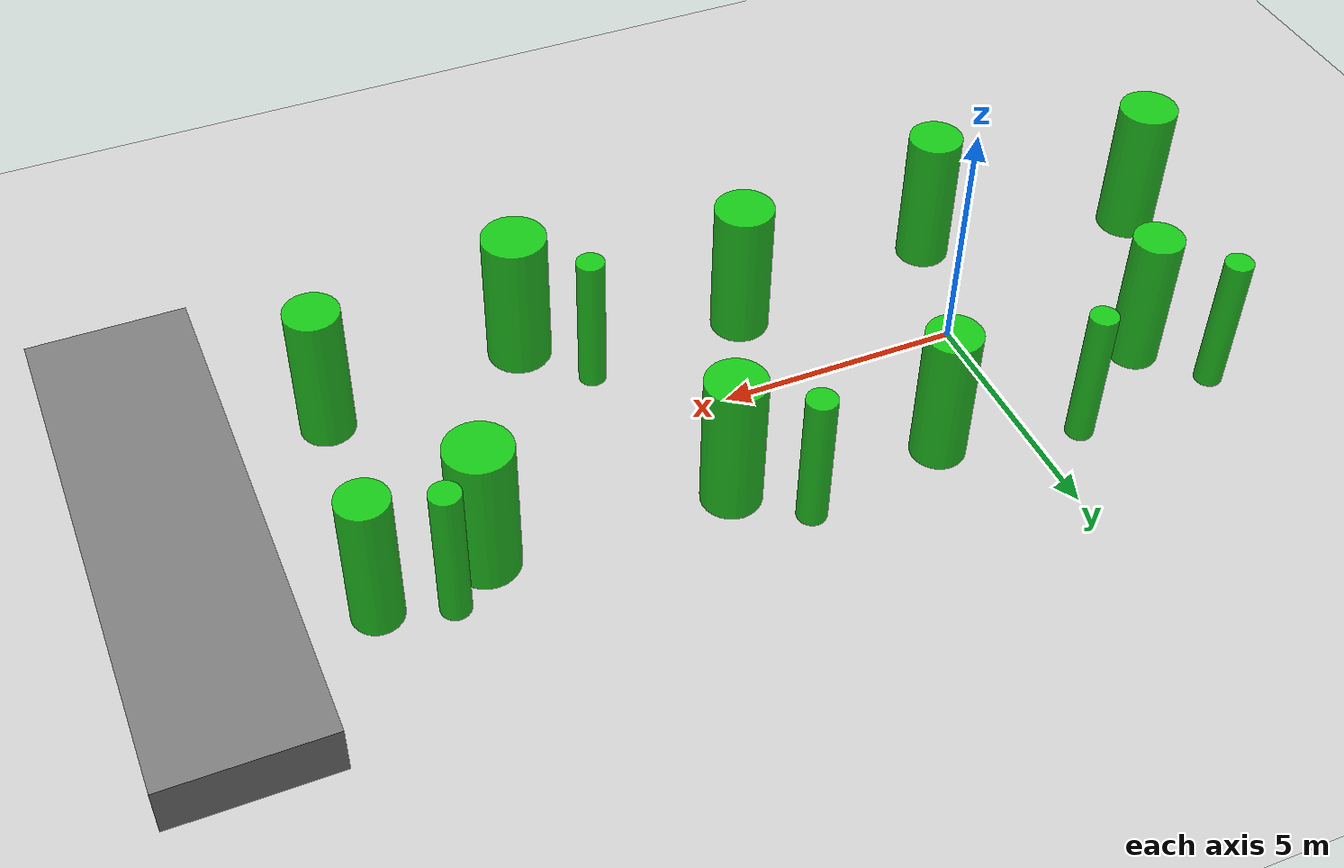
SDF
<?xml version="1.0"?>
<sdf version="1.6">
  <world name="platform_track">
    <include><uri>model://sun</uri></include>
    <include><uri>model://ground_plane</uri></include>
    <physics name="default_physics" default="0" type="ode">
      <gravity>0 0 -9.8066</gravity>
      <ode>
        <solver><type>quick</type><iters>10</iters><sor>1.3</sor></solver>
        <constraints>
          <cfm>0</cfm>
          <erp>0.2</erp>
          <contact_max_correcting_vel>100</contact_max_correcting_vel>
          <contact_surface_layer>0.001</contact_surface_layer>
        </constraints>
      </ode>
      <max_step_size>0.004</max_step_size>
      <real_time_factor>1</real_time_factor>
      <real_time_update_rate>250</real_time_update_rate>
    </physics>
    <model name="platform_track_obstacle_0">
      <static>true</static>
      <pose>-5.400 -1.800 1.500 0 0 0</pose>
      <link name="link">
        <collision name="collision">
          <geometry><cylinder><radius>0.600</radius><length>3.000</length></cylinder></geometry>
        </collision>
        <visual name="visual">
          <geometry><cylinder><radius>0.600</radius><length>3.000</length></cylinder></geometry>
          <material><ambient>0 0.8 0 0.85</ambient><diffuse>0 0.8 0 0.85</diffuse></material>
        </visual>
      </link>
    </model>
    <model name="platform_track_obstacle_1">
      <static>true</static>
      <pose>-3.200 1.900 1.500 0 0 0</pose>
      <link name="link">
        <collision name="collision">
          <geometry><cylinder><radius>0.500</radius><length>3.000</length></cylinder></geometry>
        </collision>
        <visual name="visual">
          <geometry><cylinder><radius>0.500</radius><length>3.000</length></cylinder></geometry>
          <material><ambient>0 0.8 0 0.85</ambient><diffuse>0 0.8 0 0.85</diffuse></material>
        </visual>
      </link>
    </model>
    <model name="platform_track_obstacle_2">
      <static>true</static>
      <pose>-0.800 -2.600 1.500 0 0 0</pose>
      <link name="link">
        <collision name="collision">
          <geometry><cylinder><radius>0.550</radius><length>3.000</length></cylinder></geometry>
        </collision>
        <visual name="visual">
          <geometry><cylinder><radius>0.550</radius><length>3.000</length></cylinder></geometry>
          <material><ambient>0 0.8 0 0.85</ambient><diffuse>0 0.8 0 0.85</diffuse></material>
        </visual>
      </link>
    </model>
    <model name="platform_track_obstacle_3">
      <static>true</static>
      <pose>1.800 2.800 1.500 0 0 0</pose>
      <link name="link">
        <collision name="collision">
          <geometry><cylinder><radius>0.550</radius><length>3.000</length></cylinder></geometry>
        </collision>
        <visual name="visual">
          <geometry><cylinder><radius>0.550</radius><length>3.000</length></cylinder></geometry>
          <material><ambient>0 0.8 0 0.85</ambient><diffuse>0 0.8 0 0.85</diffuse></material>
        </visual>
      </link>
    </model>
    <model name="platform_track_obstacle_4">
      <static>true</static>
      <pose>3.800 -2.000 1.500 0 0 0</pose>
      <link name="link">
        <collision name="collision">
          <geometry><cylinder><radius>0.600</radius><length>3.000</length></cylinder></geometry>
        </collision>
        <visual name="visual">
          <geometry><cylinder><radius>0.600</radius><length>3.000</length></cylinder></geometry>
          <material><ambient>0 0.8 0 0.85</ambient><diffuse>0 0.8 0 0.85</diffuse></material>
        </visual>
      </link>
    </model>
    <model name="platform_track_obstacle_5">
      <static>true</static>
      <pose>6.000 2.400 1.500 0 0 0</pose>
      <link name="link">
        <collision name="collision">
          <geometry><cylinder><radius>0.600</radius><length>3.000</length></cylinder></geometry>
        </collision>
        <visual name="visual">
          <geometry><cylinder><radius>0.600</radius><length>3.000</length></cylinder></geometry>
          <material><ambient>0 0.8 0 0.85</ambient><diffuse>0 0.8 0 0.85</diffuse></material>
        </visual>
      </link>
    </model>
    <model name="platform_track_obstacle_6">
      <static>true</static>
      <pose>8.300 -2.900 1.500 0 0 0</pose>
      <link name="link">
        <collision name="collision">
          <geometry><cylinder><radius>0.650</radius><length>3.000</length></cylinder></geometry>
        </collision>
        <visual name="visual">
          <geometry><cylinder><radius>0.650</radius><length>3.000</length></cylinder></geometry>
          <material><ambient>0 0.8 0 0.85</ambient><diffuse>0 0.8 0 0.85</diffuse></material>
        </visual>
      </link>
    </model>
    <model name="platform_track_obstacle_7">
      <static>true</static>
      <pose>10.800 2.200 1.500 0 0 0</pose>
      <link name="link">
        <collision name="collision">
          <geometry><cylinder><radius>0.650</radius><length>3.000</length></cylinder></geometry>
        </collision>
        <visual name="visual">
          <geometry><cylinder><radius>0.650</radius><length>3.000</length></cylinder></geometry>
          <material><ambient>0 0.8 0 0.85</ambient><diffuse>0 0.8 0 0.85</diffuse></material>
        </visual>
      </link>
    </model>
    <model name="platform_track_obstacle_8">
      <static>true</static>
      <pose>12.500 -2.300 1.500 0 0 0</pose>
      <link name="link">
        <collision name="collision">
          <geometry><cylinder><radius>0.550</radius><length>3.000</length></cylinder></geometry>
        </collision>
        <visual name="visual">
          <geometry><cylinder><radius>0.550</radius><length>3.000</length></cylinder></geometry>
          <material><ambient>0 0.8 0 0.85</ambient><diffuse>0 0.8 0 0.85</diffuse></material>
        </visual>
      </link>
    </model>
    <model name="platform_track_obstacle_9">
      <static>true</static>
      <pose>13.000 2.600 1.500 0 0 0</pose>
      <link name="link">
        <collision name="collision">
          <geometry><cylinder><radius>0.500</radius><length>3.000</length></cylinder></geometry>
        </collision>
        <visual name="visual">
          <geometry><cylinder><radius>0.500</radius><length>3.000</length></cylinder></geometry>
          <material><ambient>0 0.8 0 0.85</ambient><diffuse>0 0.8 0 0.85</diffuse></material>
        </visual>
      </link>
    </model>
    <model name="goal_platform">
      <static>true</static>
      <pose>16.000 0.000 0.525 0 0 0</pose>
      <link name="link">
        <collision name="collision">
          <geometry><box><size>3.200 11.200 1.050</size></box></geometry>
        </collision>
        <visual name="visual">
          <geometry><box><size>3.200 11.200 1.050</size></box></geometry>
          <material><ambient>0.48 0.48 0.48 1</ambient><diffuse>0.48 0.48 0.48 1</diffuse></material>
        </visual>
      </link>
    </model>
    <model name="platform_moving_obstacle_0">
      <static>false</static>
      <pose>-4.200 3.100 1.500 0 0 0</pose>
      <link name="link">
        <gravity>false</gravity>
        <inertial>
          <mass>1.0</mass>
          <inertia>
            <ixx>0.1</ixx><ixy>0.0</ixy><ixz>0.0</ixz>
            <iyy>0.1</iyy><iyz>0.0</iyz>
            <izz>0.1</izz>
          </inertia>
        </inertial>
        <collision name="collision">
          <geometry><cylinder><radius>0.280</radius><length>3.000</length></cylinder></geometry>
        </collision>
        <visual name="visual">
          <geometry><cylinder><radius>0.280</radius><length>3.000</length></cylinder></geometry>
          <material><ambient>0 0.8 0 0.85</ambient><diffuse>0 0.8 0 0.85</diffuse></material>
        </visual>
      </link>
    </model>
    <model name="platform_moving_obstacle_1">
      <static>false</static>
      <pose>-1.000 3.420 1.500 0 0 0</pose>
      <link name="link">
        <gravity>false</gravity>
        <inertial>
          <mass>1.0</mass>
          <inertia>
            <ixx>0.1</ixx><ixy>0.0</ixy><ixz>0.0</ixz>
            <iyy>0.1</iyy><iyz>0.0</iyz>
            <izz>0.1</izz>
          </inertia>
        </inertial>
        <collision name="collision">
          <geometry><cylinder><radius>0.280</radius><length>3.000</length></cylinder></geometry>
        </collision>
        <visual name="visual">
          <geometry><cylinder><radius>0.280</radius><length>3.000</length></cylinder></geometry>
          <material><ambient>0 0.8 0 0.85</ambient><diffuse>0 0.8 0 0.85</diffuse></material>
        </visual>
      </link>
    </model>
    <model name="platform_moving_obstacle_2">
      <static>false</static>
      <pose>4.800 3.400 1.500 0 0 0</pose>
      <link name="link">
        <gravity>false</gravity>
        <inertial>
          <mass>1.0</mass>
          <inertia>
            <ixx>0.1</ixx><ixy>0.0</ixy><ixz>0.0</ixz>
            <iyy>0.1</iyy><iyz>0.0</iyz>
            <izz>0.1</izz>
          </inertia>
        </inertial>
        <collision name="collision">
          <geometry><cylinder><radius>0.300</radius><length>3.000</length></cylinder></geometry>
        </collision>
        <visual name="visual">
          <geometry><cylinder><radius>0.300</radius><length>3.000</length></cylinder></geometry>
          <material><ambient>0 0.8 0 0.85</ambient><diffuse>0 0.8 0 0.85</diffuse></material>
        </visual>
      </link>
    </model>
    <model name="platform_moving_obstacle_3">
      <static>false</static>
      <pose>7.200 -1.645 1.500 0 0 0</pose>
      <link name="link">
        <gravity>false</gravity>
        <inertial>
          <mass>1.0</mass>
          <inertia>
            <ixx>0.1</ixx><ixy>0.0</ixy><ixz>0.0</ixz>
            <iyy>0.1</iyy><iyz>0.0</iyz>
            <izz>0.1</izz>
          </inertia>
        </inertial>
        <collision name="collision">
          <geometry><cylinder><radius>0.280</radius><length>3.000</length></cylinder></geometry>
        </collision>
        <visual name="visual">
          <geometry><cylinder><radius>0.280</radius><length>3.000</length></cylinder></geometry>
          <material><ambient>0 0.8 0 0.85</ambient><diffuse>0 0.8 0 0.85</diffuse></material>
        </visual>
      </link>
    </model>
    <model name="platform_moving_obstacle_4">
      <static>false</static>
      <pose>11.671 3.000 1.500 0 0 0</pose>
      <link name="link">
        <gravity>false</gravity>
        <inertial>
          <mass>1.0</mass>
          <inertia>
            <ixx>0.1</ixx><ixy>0.0</ixy><ixz>0.0</ixz>
            <iyy>0.1</iyy><iyz>0.0</iyz>
            <izz>0.1</izz>
          </inertia>
        </inertial>
        <collision name="collision">
          <geometry><cylinder><radius>0.300</radius><length>3.000</length></cylinder></geometry>
        </collision>
        <visual name="visual">
          <geometry><cylinder><radius>0.300</radius><length>3.000</length></cylinder></geometry>
          <material><ambient>0 0.8 0 0.85</ambient><diffuse>0 0.8 0 0.85</diffuse></material>
        </visual>
      </link>
    </model>
  </world>
</sdf>
